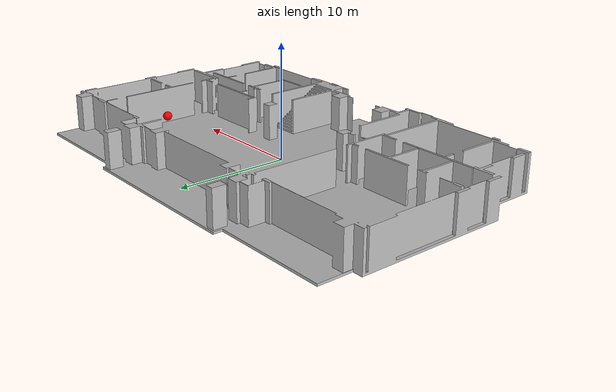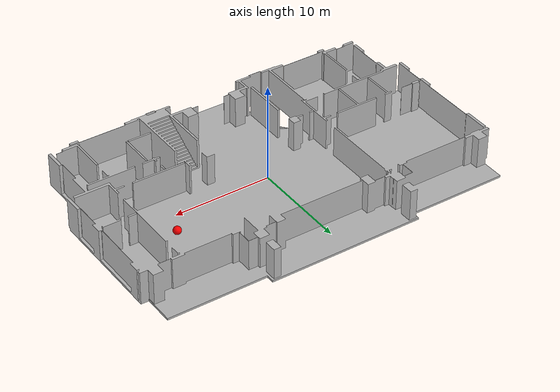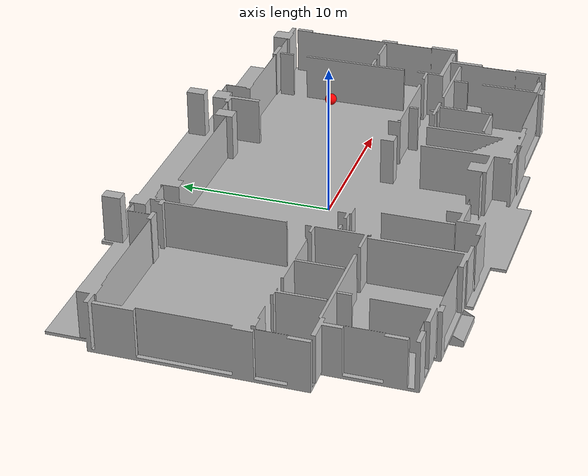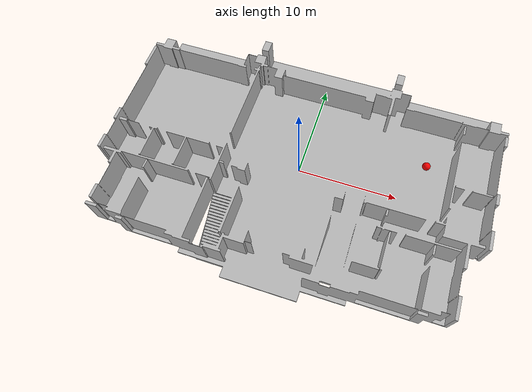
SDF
<?xml version="1.0" ?>
<sdf version="1.9">
  <world name="villa_wall_test">

    <!-- 故意讓重力朝 +X，讓球水平撞牆 -->
    <gravity>9.81 0 0</gravity>

    <physics name="1ms" type="ignored">
      <max_step_size>0.001</max_step_size>
      <real_time_factor>1.0</real_time_factor>
    </physics>

    <plugin
      filename="gz-sim-physics-system"
      name="gz::sim::systems::Physics"/>

    <plugin
      filename="gz-sim-user-commands-system"
      name="gz::sim::systems::UserCommands"/>

    <plugin
      filename="gz-sim-scene-broadcaster-system"
      name="gz::sim::systems::SceneBroadcaster"/>

    <light type="directional" name="sun">
      <pose>0 0 20 0 0 0</pose>
      <diffuse>0.8 0.8 0.8 1</diffuse>
      <specular>0.2 0.2 0.2 1</specular>
      <direction>-0.5 0.1 -0.9</direction>
    </light>

    <include>
      <uri>model://villa_1F</uri>
    </include>

    <!--
      Target wall:
      1F_Wall_Interior_010_Pantry_Kitchen
      x ≈ 14.628 m
      y ≈ 3.571 m
      height = 3.2 m
    -->
    <model name="wall_test_ball">
      <pose>12.0 3.57 1.5 0 0 0</pose>

      <link name="ball_link">

        <inertial>
          <mass>1.0</mass>
          <inertia>
            <ixx>0.016</ixx>
            <iyy>0.016</iyy>
            <izz>0.016</izz>
          </inertia>
        </inertial>

        <collision name="ball_collision">
          <geometry>
            <sphere>
              <radius>0.4</radius>
            </sphere>
          </geometry>
        </collision>

        <visual name="ball_visual">
          <geometry>
            <sphere>
              <radius>0.4</radius>
            </sphere>
          </geometry>

          <material>
            <ambient>1 0 0 1</ambient>
            <diffuse>1 0 0 1</diffuse>
          </material>
        </visual>

      </link>
    </model>

  </world>
</sdf>

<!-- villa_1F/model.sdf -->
<sdf version="1.9">

  <model name="villa_1F">

    <static>true</static>

    <link name="villa_1F_link">

      <visual name="villa_1F_visual">
        <geometry>
          <mesh>
            <uri>meshes/villa_1F.obj</uri>
          </mesh>
        </geometry>
      </visual>

      <collision name="villa_1F_collision">
        <geometry>
          <mesh>
            <uri>meshes/villa_1F.obj</uri>
          </mesh>
        </geometry>
      </collision>

    </link>

  </model>

</sdf>
